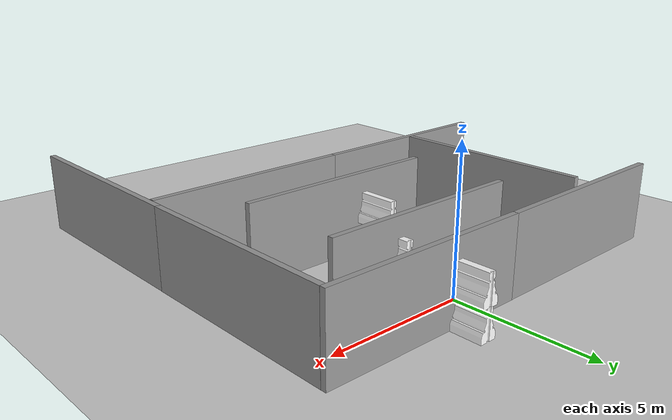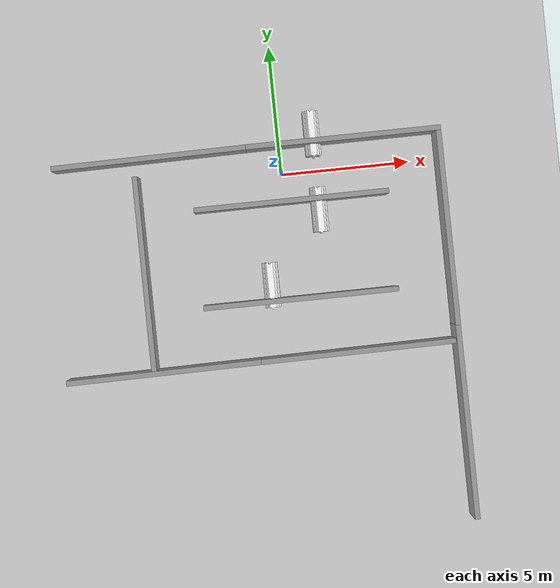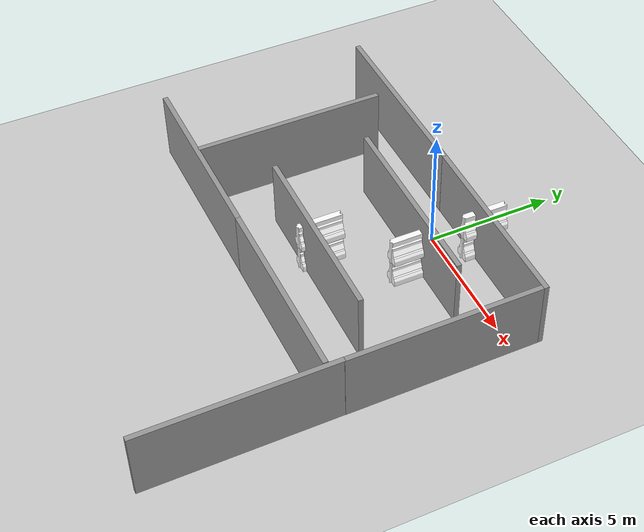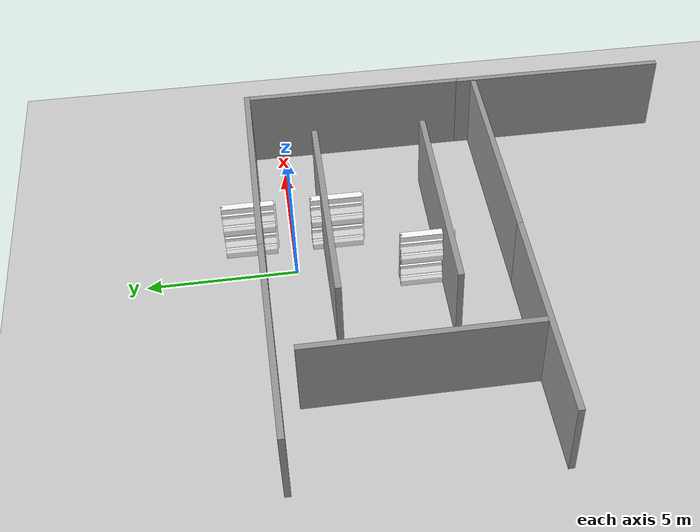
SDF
<sdf version="1.6">
 <world name="vrc_task_1">
  <scene>
   <ambient>0.4 0.4 0.4 1</ambient>
   <background>0.7 0.7 0.7 1</background>
   <shadows>1</shadows>
   <sky><clouds><speed>1</speed></clouds></sky>
  </scene>
  <physics name="default_physics" default="0" type="ode">
   <ode>
    <solver>
     <type>quick</type>
     <iters>10</iters>
     <sor>1</sor>
     <use_dynamic_moi_rescaling>0</use_dynamic_moi_rescaling>
    </solver>
    <constraints>
     <cfm>0</cfm>
     <erp>0.2</erp>
     <contact_max_correcting_vel>100</contact_max_correcting_vel>
     <contact_surface_layer>0.001</contact_surface_layer>
    </constraints>
   </ode>
   <max_step_size>0.004</max_step_size>
   <real_time_factor>1</real_time_factor>
   <real_time_update_rate>250</real_time_update_rate>
  </physics>
  <light name="sun" type="directional">
   <pose>0 0 10 0 -0 0</pose>
   <diffuse>0.8 0.8 0.8 1</diffuse>
   <specular>0.2 0.2 0.2 1</specular>
   <attenuation>
    <range>1000</range>
    <constant>0.9</constant>
    <linear>0.01</linear>
    <quadratic>0.001</quadratic>
   </attenuation>
   <direction>-0.5 0.1 -0.9</direction>
  </light>
  <model name="ground_plane">
   <static>1</static>
   <link name="link">
    <collision name="collision">
     <geometry><plane><normal>0 0 1</normal><size>100 100</size></plane></geometry>
     <surface><friction><ode><mu>100</mu><mu2>50</mu2></ode></friction></surface>
    </collision>
    <visual name="visual">
     <cast_shadows>0</cast_shadows>
     <geometry><plane><normal>0 0 1</normal><size>100 100</size></plane></geometry>
     <material>
      <script><uri>file://media/materials/scripts/gazebo.material</uri><name>Gazebo/Grey</name></script>
     </material>
    </visual>
   </link>
  </model>
  <gravity>0 0 -9.8066</gravity>
  <magnetic_field>6e-06 2.3e-05 -4.2e-05</magnetic_field>
  <atmosphere type="adiabatic"/>
  <spherical_coordinates>
   <surface_model>EARTH_WGS84</surface_model>
   <latitude_deg>0</latitude_deg>
   <longitude_deg>0</longitude_deg>
   <elevation>0</elevation>
   <heading_deg>0</heading_deg>
  </spherical_coordinates>
  <model name="grey_wall">
   <static>1</static>
   <link name="link">
    <pose>0 0 1.4 0 -0 0</pose>
    <collision name="collision"><geometry><box><size>7.5 0.2 2.8</size></box></geometry></collision>
    <visual name="visual">
     <cast_shadows>0</cast_shadows>
     <geometry><box><size>7.5 0.2 2.8</size></box></geometry>
     <material>
      <script>
       <uri>model://grey_wall/materials/scripts</uri>
       <uri>model://grey_wall/materials/textures</uri>
       <name>vrc/grey_wall</name>
      </script>
     </material>
    </visual>
   </link>
   <pose>2.45648 1.09306 0 0 -0 0</pose>
  </model>
  <model name="grey_wall_0">
   <static>1</static>
   <link name="link">
    <pose>0 0 1.4 0 -0 0</pose>
    <collision name="collision"><geometry><box><size>7.5 0.2 2.8</size></box></geometry></collision>
    <visual name="visual">
     <cast_shadows>0</cast_shadows>
     <geometry><box><size>7.5 0.2 2.8</size></box></geometry>
     <material>
      <script>
       <uri>model://grey_wall/materials/scripts</uri>
       <uri>model://grey_wall/materials/textures</uri>
       <name>vrc/grey_wall</name>
      </script>
     </material>
    </visual>
   </link>
   <pose>6.10679 -2.7524 0 0 0 -1.57159</pose>
  </model>
  <model name="grey_wall_1">
   <static>1</static>
   <link name="link">
    <pose>0 0 1.4 0 -0 0</pose>
    <collision name="collision"><geometry><box><size>7.5 0.2 2.8</size></box></geometry></collision>
    <visual name="visual">
     <cast_shadows>0</cast_shadows>
     <geometry><box><size>7.5 0.2 2.8</size></box></geometry>
     <material>
      <script>
       <uri>model://grey_wall/materials/scripts</uri>
       <uri>model://grey_wall/materials/textures</uri>
       <name>vrc/grey_wall</name>
      </script>
     </material>
    </visual>
   </link>
   <pose>0.246366 -1.10849 0 0 -0 0</pose>
  </model>
  <model name="grey_wall_2">
   <static>1</static>
   <link name="link">
    <pose>0 0 1.4 0 -0 0</pose>
    <collision name="collision"><geometry><box><size>7.5 0.2 2.8</size></box></geometry></collision>
    <visual name="visual">
     <cast_shadows>0</cast_shadows>
     <geometry><box><size>7.5 0.2 2.8</size></box></geometry>
     <material>
      <script>
       <uri>model://grey_wall/materials/scripts</uri>
       <uri>model://grey_wall/materials/textures</uri>
       <name>vrc/grey_wall</name>
      </script>
     </material>
    </visual>
   </link>
   <pose>2.21938 -7.11095 0 0 0 -3.13251</pose>
  </model>
  <model name="grey_wall_1_clone">
   <static>1</static>
   <link name="link">
    <pose>0 0 1.4 0 -0 0</pose>
    <collision name="collision"><geometry><box><size>7.5 0.2 2.8</size></box></geometry></collision>
    <visual name="visual">
     <cast_shadows>0</cast_shadows>
     <geometry><box><size>7.5 0.2 2.8</size></box></geometry>
     <material>
      <script>
       <uri>model://grey_wall/materials/scripts</uri>
       <uri>model://grey_wall/materials/textures</uri>
       <name>vrc/grey_wall</name>
      </script>
     </material>
    </visual>
   </link>
   <pose>0.243722 -4.87715 0 0 -0 0</pose>
  </model>
  <model name="grey_wall_0_clone">
   <static>1</static>
   <link name="link">
    <pose>0 0 1.4 0 -0 0</pose>
    <collision name="collision"><geometry><box><size>7.5 0.2 2.8</size></box></geometry></collision>
    <visual name="visual">
     <cast_shadows>0</cast_shadows>
     <geometry><box><size>7.5 0.2 2.8</size></box></geometry>
     <material>
      <script>
       <uri>model://grey_wall/materials/scripts</uri>
       <uri>model://grey_wall/materials/textures</uri>
       <name>vrc/grey_wall</name>
      </script>
     </material>
    </visual>
   </link>
   <pose>6.09316 -10.2058 0 0 0 -1.57159</pose>
  </model>
  <model name="drc_practice_white_jersey_barrier">
   <static>1</static>
   <link name="link">
    <visual name="visual">
     <geometry>
      <mesh><uri>model://drc_practice_white_jersey_barrier/meshes/jersey_barrier.dae</uri></mesh>
     </geometry>
    </visual>
    <collision name="collision">
     <geometry>
      <mesh><uri>model://drc_practice_white_jersey_barrier/meshes/jersey_barrier.dae</uri></mesh>
     </geometry>
    </collision>
   </link>
   <pose>1.31068 -1.51975 0 0 -0 0</pose>
  </model>
  <model name="drc_practice_white_jersey_barrier_0">
   <static>1</static>
   <link name="link">
    <visual name="visual">
     <geometry>
      <mesh><uri>model://drc_practice_white_jersey_barrier/meshes/jersey_barrier.dae</uri></mesh>
     </geometry>
    </visual>
    <collision name="collision">
     <geometry>
      <mesh><uri>model://drc_practice_white_jersey_barrier/meshes/jersey_barrier.dae</uri></mesh>
     </geometry>
    </collision>
   </link>
   <pose>1.31358 -1.52707 1.04398 0 -0 0</pose>
  </model>
  <model name="drc_practice_white_jersey_barrier_0_clone">
   <static>1</static>
   <link name="link">
    <visual name="visual">
     <geometry>
      <mesh><uri>model://drc_practice_white_jersey_barrier/meshes/jersey_barrier.dae</uri></mesh>
     </geometry>
    </visual>
    <collision name="collision">
     <geometry>
      <mesh><uri>model://drc_practice_white_jersey_barrier/meshes/jersey_barrier.dae</uri></mesh>
     </geometry>
    </collision>
   </link>
   <pose>1.31197 1.43 1.04398 0 -0 0</pose>
  </model>
  <model name="drc_practice_white_jersey_barrier_0_clone_0">
   <static>1</static>
   <link name="link">
    <visual name="visual">
     <geometry>
      <mesh><uri>model://drc_practice_white_jersey_barrier/meshes/jersey_barrier.dae</uri></mesh>
     </geometry>
    </visual>
    <collision name="collision">
     <geometry>
      <mesh><uri>model://drc_practice_white_jersey_barrier/meshes/jersey_barrier.dae</uri></mesh>
     </geometry>
    </collision>
   </link>
   <pose>1.31226 1.43327 0.0011 0 -0 0</pose>
  </model>
  <model name="grey_wall_2_clone">
   <static>1</static>
   <link name="link">
    <pose>0 0 1.4 0 -0 0</pose>
    <collision name="collision"><geometry><box><size>7.5 0.2 2.8</size></box></geometry></collision>
    <visual name="visual">
     <cast_shadows>0</cast_shadows>
     <geometry><box><size>7.5 0.2 2.8</size></box></geometry>
     <material>
      <script>
       <uri>model://grey_wall/materials/scripts</uri>
       <uri>model://grey_wall/materials/textures</uri>
       <name>vrc/grey_wall</name>
      </script>
     </material>
    </visual>
   </link>
   <pose>-5.27305 -7.17397 0 0 0 -3.13251</pose>
  </model>
  <model name="grey_wall_0_clone_0">
   <static>1</static>
   <link name="link">
    <pose>0 0 1.4 0 -0 0</pose>
    <collision name="collision"><geometry><box><size>7.5 0.2 2.8</size></box></geometry></collision>
    <visual name="visual">
     <cast_shadows>0</cast_shadows>
     <geometry><box><size>7.5 0.2 2.8</size></box></geometry>
     <material>
      <script>
       <uri>model://grey_wall/materials/scripts</uri>
       <uri>model://grey_wall/materials/textures</uri>
       <name>vrc/grey_wall</name>
      </script>
     </material>
    </visual>
   </link>
   <pose>-5.6313 -3.34747 0 0 0 -1.57159</pose>
  </model>
  <model name="drc_practice_white_jersey_barrier_clone">
   <static>1</static>
   <link name="link">
    <visual name="visual">
     <geometry>
      <mesh><uri>model://drc_practice_white_jersey_barrier/meshes/jersey_barrier.dae</uri></mesh>
     </geometry>
    </visual>
    <collision name="collision">
     <geometry>
      <mesh><uri>model://drc_practice_white_jersey_barrier/meshes/jersey_barrier.dae</uri></mesh>
     </geometry>
    </collision>
   </link>
   <pose>-0.826343 -4.24592 0 0 -0 0</pose>
  </model>
  <model name="drc_practice_white_jersey_barrier_0_clone_1">
   <static>1</static>
   <link name="link">
    <visual name="visual">
     <geometry>
      <mesh><uri>model://drc_practice_white_jersey_barrier/meshes/jersey_barrier.dae</uri></mesh>
     </geometry>
    </visual>
    <collision name="collision">
     <geometry>
      <mesh><uri>model://drc_practice_white_jersey_barrier/meshes/jersey_barrier.dae</uri></mesh>
     </geometry>
    </collision>
   </link>
   <pose>-0.842371 -4.25696 1.04398 0 -0 0</pose>
  </model>
  <model name="grey_wall_2_clone_clone">
   <static>1</static>
   <link name="link">
    <pose>0 0 1.4 0 -0 0</pose>
    <collision name="collision"><geometry><box><size>7.5 0.2 2.8</size></box></geometry></collision>
    <visual name="visual">
     <cast_shadows>0</cast_shadows>
     <geometry><box><size>7.5 0.2 2.8</size></box></geometry>
     <material>
      <script>
       <uri>model://grey_wall/materials/scripts</uri>
       <uri>model://grey_wall/materials/textures</uri>
       <name>vrc/grey_wall</name>
      </script>
     </material>
    </visual>
   </link>
   <pose>-5.02576 1.05645 0 0 0 -3.13251</pose>
  </model>
 </world>
</sdf>
